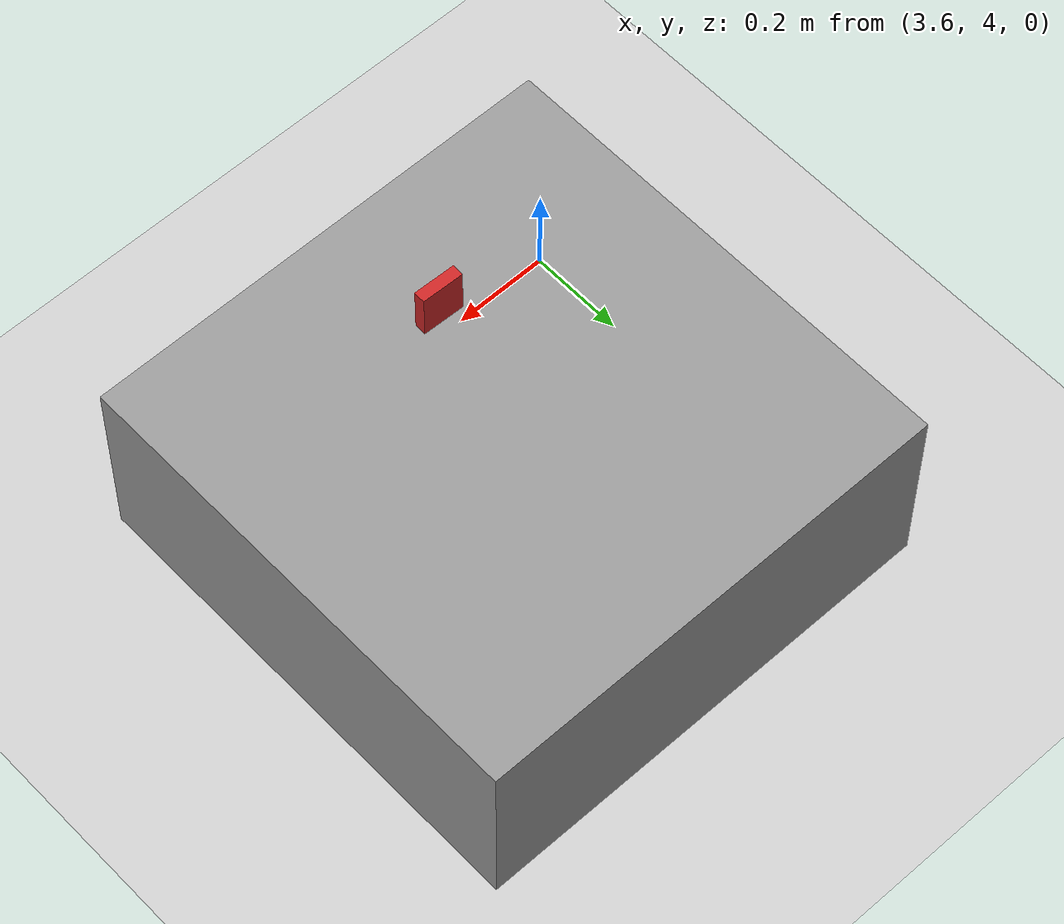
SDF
<sdf version="1.4">
 <world name="prueba1">
  <model name="ground_plane">
   <static>1</static>
   <link name="link">
    <collision name="collision">
     <geometry><plane><normal>0 0 1</normal><size>20 20</size></plane></geometry>
     <surface><friction><ode><mu>100</mu><mu2>50</mu2></ode></friction></surface>
    </collision>
    <visual name="visual">
     <cast_shadows>0</cast_shadows>
     <geometry><plane><normal>0 0 1</normal><size>20 20</size></plane></geometry>
     <material>
      <script><uri>file://media/materials/scripts/gazebo.material</uri><name>Gazebo/Grey</name></script>
     </material>
    </visual>
    <velocity_decay><linear>0</linear><angular>0</angular></velocity_decay>
   </link>
  </model>
  <light name="sun" type="directional">
   <pose>0 0 8 0 -0 0</pose>
   <diffuse>0.8 0.8 0.8 1</diffuse>
   <specular>0.2 0.2 0.2 1</specular>
   <attenuation>
    <range>100</range>
    <constant>0.9</constant>
    <linear>0.01</linear>
    <quadratic>0.001</quadratic>
   </attenuation>
   <direction>-0.5 0.1 -0.9</direction>
  </light>
  <physics type="ode">
   <max_step_size>0.001</max_step_size>
   <real_time_factor>1</real_time_factor>
   <real_time_update_rate>1000</real_time_update_rate>
   <gravity>0 0 -9.8</gravity>
  </physics>
  <scene><ambient>0.4 0.4 0.4 1</ambient><background>0.7 0.7 0.7 1</background><shadows>1</shadows></scene>
  <spherical_coordinates>
   <surface_model>EARTH_WGS84</surface_model>
   <latitude_deg>0</latitude_deg>
   <longitude_deg>0</longitude_deg>
   <elevation>0</elevation>
   <heading_deg>0</heading_deg>
  </spherical_coordinates>
  <model name="unit_box_1">
   <static>1</static>
   <pose>4.03826 4.40017 0.203548 4.03897e-28 -3e-06 1e-06</pose>
   <link name="link_box_1">
    <inertial>
     <mass>1</mass>
     <inertia><ixx>1</ixx><ixy>0</ixy><ixz>0</ixz><iyy>1</iyy><iyz>0</iyz><izz>1</izz></inertia>
    </inertial>
    <collision name="collision">
     <geometry><box><size>1 1 0.407127</size></box></geometry>
     <surface><friction><ode><mu>100</mu><mu2>50</mu2></ode></friction></surface>
    </collision>
    <visual name="visual">
     <geometry><box><size>1 1 0.407127</size></box></geometry>
     <material>
      <script><uri>file://media/materials/scripts/gazebo.material</uri><name>Gazebo/Grey</name></script>
     </material>
    </visual>
    <velocity_decay><linear>0</linear><angular>0</angular></velocity_decay>
   </link>
   <static>0</static>
  </model>
  <model name="unit_box_3">
   <pose>4.0 4.170889 0.457141 -6e-06 1.2e-05 -0.032474</pose>
   <link name="link_box_3">
    <inertial>
     <mass>0.5</mass>
     <inertia><ixx>0.0001</ixx><ixy>0</ixy><ixz>0</ixz><iyy>5e-05</iyy><iyz>0</iyz><izz>0.0001</izz></inertia>
    </inertial>
    <collision name="collision">
     <geometry><box><size>0.087152 0.024171 0.100067</size></box></geometry>
    </collision>
    <visual name="visual">
     <geometry><box><size>0.087152 0.024171 0.100067</size></box></geometry>
     <material>
      <script><uri>file://media/materials/scripts/gazebo.material</uri><name>Gazebo/Red</name></script>
     </material>
    </visual>
    <velocity_decay><linear>0</linear><angular>0</angular></velocity_decay>
   </link>
   <static>0</static>
  </model>
 </world>
</sdf>
